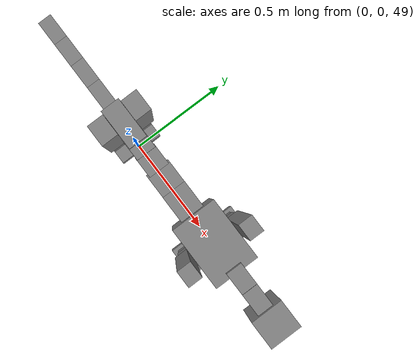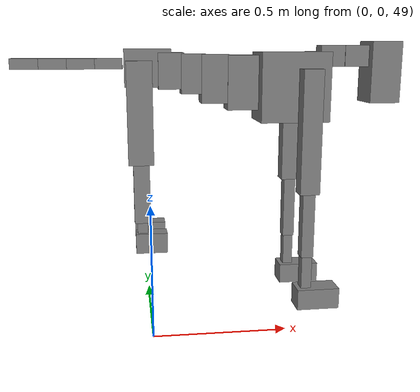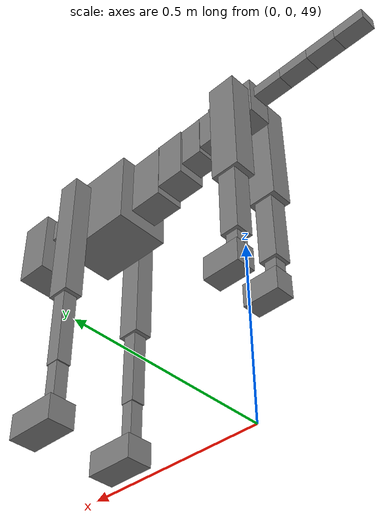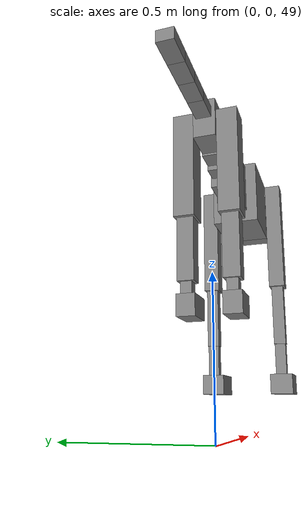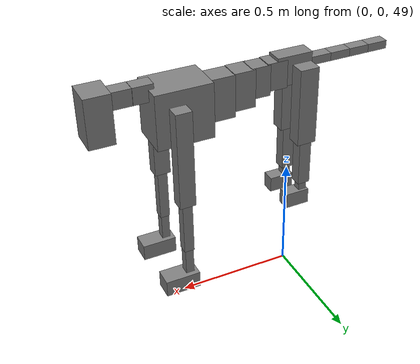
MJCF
<mujoco model="dog">

    <default>
        <joint armature="0.02" stiffness="1" damping="0.2" limited="true"/>
        <geom condim="3" friction="1 0.05 0.05" margin="0.01"/>
        <motor ctrllimited="true" ctrlrange="-1.0 1.0" forcelimited="true" gear="50"/>
    </default>

    <compiler inertiafromgeom="true" angle="radian"/>

    <option timestep="0.016" iterations="50" tolerance="1e-10" solver="Newton" jacobian="dense" cone="pyramidal"/>

    <size nconmax="20000" njmax="60000" nstack="5000000"/>
    <visual>
        <map force="0.1" zfar="30"/>
        <rgba haze="0.15 0.25 0.35 1"/>
        <quality shadowsize="2048"/>
        <global offwidth="800" offheight="800"/>
    </visual>

    <asset>
        <texture type="skybox" builtin="gradient" rgb1="0.3 0.5 0.7" rgb2="0 0 0" width="512" height="512"/>
        <texture name="texplane" type="2d" builtin="checker" rgb1=".2 .3 .4" rgb2=".1 0.15 0.2" width="512" height="512"
                 mark="cross" markrgb=".8 .8 .8"/>
        <texture name="texgeom" type="cube" builtin="flat" mark="cross" width="127" height="1278" rgb1="0.8 0.6 0.4"
                 rgb2="0.8 0.6 0.4" markrgb="1 1 1" random="0.01"/>

        <material name="matplane" reflectance="0.3" texture="texplane" texrepeat="1 1" texuniform="true"/>
        <material name="matgeom" texture="texgeom" texuniform="true" rgba="0.8 0.6 .4 1"/>
    </asset>

    <worldbody>
        <geom name="floor" pos="0 0 0" size="0 0 .25" type="plane" material="matplane" condim="3"/>

        <light directional="false" diffuse=".2 .2 .2" specular="0 0 0" pos="0 0 5" dir="0 0 -1" castshadow="false"/>
        <light mode="targetbodycom" target="torso" directional="false" diffuse=".8 .8 .8" specular="0.3 0.3 0.3"
               pos="0 0 4.0" dir="0 0 -1"/>

        <body name="root" pos="0 0 50">
            <freejoint name="root_1"/>
            <geom type="box" pos="0 0 -0.02" size="0.0774  0.0358  0.063" density="2030"/>

            <body name="spine1" pos="0.054 0 0">
                <joint name="spine1_y" axis="0 1 0" range="0 0.7" limited="true"/>
                <geom type="box" pos="0.02375 0 -0.03" size="0.04375  0.0375  0.05985" density="2030"/>

                <body name="spine2" pos="0.0612 0 0">
                    <joint name="spine2_y" axis="0 1 0" range="-0.15 0.15" limited="true"/>
                    <geom type="box" pos="0.03555  0  -0.04" size="0.04055  0.039  0.06615" density="2030"/>

                    <body name="spine3" pos="0.0730 0 0">
                        <joint name="spine3_y" axis="0 1 0" range="-0.15 0.15" limited="true"/>
                        <geom type="box" pos="0.03555  0  -0.057" size="0.04555  0.0445  0.081" density="2030"/>

                        <body name="spine4" pos="0.0780 0 0">
                            <joint name="spine4_y" axis="0 1 0" range="-0.15 0.15" limited="true"/>
                            <geom type="box" pos="0.05265  0  -0.07" size="0.05265  0.045  0.09135" density="2030"/>

                            <body name="torso" pos="0.1082 0 0">
                                <joint name="torso_y" axis="0 1 0" range="-0.15 0.15" limited="true"/>
                                <geom type="box" pos="0.11925  0  -0.085" size="0.11925  0.085  0.11745"
                                      density="2030"/>

                                <body name="neck1" pos="0.2160  0   0.0180">
                                    <joint name="neck1_y" axis="0 1 0" range="-1.2  -1" limited="true"/>
                                    <geom type="box" pos="0.0423  0  0" size="0.0423  0.03  0.036" density="2325"/>

                                    <body name="neck2" pos="0.0853  0  0">
                                        <joint name="neck2_y" axis="0 1 0" range="0.1  0" limited="true"/>
                                        <geom type="box" pos="0.0423  0  0" size="0.0423  0.03  0.036" density="2325"/>

                                        <body name="head" pos="0.0853  0  0">
                                            <joint name="head_y" axis="0 1 0" range="-0.3  -0.2" limited="true"/>
                                            <geom type="box" pos="0.0531  0  -0.055" size="0.0531  0.06  0.1044"
                                                  density="4030"/>

                                        </body>
                                    </body>
                                </body>

                                <body name="front_shoulder" pos="0.156  0   -0.0480">
                                    <joint name="front_shoulder_y" axis="0 1 0" range="-1 1.5" limited="true"/>
                                    <geom type="box" pos="0 0.13 -0.1819" size="0.0338  0.0289  0.2085" density="1158"/>
                                    <geom type="box" pos="0 -0.13 -0.1819" size="0.0338  0.0289  0.2085"
                                          density="1158"/>

                                    <body name="front_elbow" pos="0  0  -0.3637">
                                        <joint name="front_elbow_y" axis="0 1 0" range="-2 0" limited="true"/>
                                        <geom type="box" pos="0 0.13 -0.1250" size="0.0211  0.0216  0.1250"
                                              density="1081"/>
                                        <geom type="box" pos="0 -0.13 -0.1250" size="0.0211  0.0216  0.1250"
                                              density="1081"/>

                                        <body name="front_wrist" pos="0  0  -0.2500">
                                            <joint name="front_wrist_y" axis="0 1 0" range="-0.2 0" limited="true"/>
                                            <geom type="box" pos="0 0.13 -0.0641" size="0.0177  0.0197  0.0772"
                                                  density="1664"/>
                                            <geom type="box" pos="0 -0.13 -0.0641" size="0.0177  0.0197  0.0772"
                                                  density="1664"/>

                                            <body name="front_finger_end" pos="0  0  -0.1281">
                                                <joint name="front_finger_y" axis="0 1 0" range="-0.4 1"
                                                       limited="true"/>
                                                <geom type="box" pos="0.0404  0.13  -0.0212"
                                                      size="0.0741  0.0404  0.0362" density="1515"/>
                                                <geom type="box" pos="0.0404  -0.13  -0.0212"
                                                      size="0.0741  0.0404  0.0362" density="1515"/>

                                            </body>

                                        </body>
                                    </body>
                                </body>

                            </body>
                        </body>
                    </body>
                </body>
            </body>

            <body name="back_hip" pos="-0.03 0 -0.018">
                <joint name="back_hip_y" axis="0 1 0" range="-1.5 0.3" limited="true"/>
                <geom type="box" pos="0 0.07 -0.1466" size="0.0419  0.0328  0.1694" density="1154"/>
                <geom type="box" pos="0 -0.07 -0.1466" size="0.0419  0.0328  0.1694" density="1154"/>

                <body name="back_knee" pos="0  0  -0.2933">
                    <joint name="back_knee_y" axis="0 1 0" range="0 2.8" limited="true"/>
                    <geom type="box" pos="0 0.07 -0.1030" size="0.0268  0.0264  0.1186" density="1227"/>
                    <geom type="box" pos="0 -0.07 -0.1030" size="0.0268  0.0264  0.1186" density="1227"/>

                    <body name="back_ankle" pos="0  0  -0.2060">
                        <joint name="back_ankle_y" axis="0 1 0" range="-2.2 0" limited="true"/>
                        <geom type="box" pos="0 0.07 -0.0341" size="0.0177  0.0177  0.0454" density="1284"/>
                        <geom type="box" pos="0 -0.07 -0.0341" size="0.0177  0.0177  0.0454" density="1284"/>

                        <body name="back_toe_end" pos="0  0  -0.0682">
                            <joint name="back_toe_y" axis="0 1 0" range="-0.4 1" limited="true"/>
                            <geom type="box" pos="0.0290  0.07  -0.0192" size="0.0532  0.0290  0.0342" density="1515"/>
                            <geom type="box" pos="0.0290  -0.07  -0.0192" size="0.0532  0.0290  0.0342" density="1515"/>

                        </body>
                    </body>
                </body>
            </body>

            <body name="tail1" pos="-0.074 0 -0.006">
                <joint name="tail1_y" axis="0 1 0" range="-0.2 0.2" limited="true"/>
                <geom type="box" pos="-0.0536  0  0" size="0.045  0.025  0.0175" density="1587"/>

                <body name="tail2" pos="-0.09 0 0">
                    <joint name="tail2_y" axis="0 1 0" range="-0.2 0.2" limited="true"/>
                    <geom type="box" pos="-0.0536  0  0" size="0.045  0.025  0.0175" density="1587"/>

                    <body name="tail3" pos="-0.09 0 0">
                        <joint name="tail3_y" axis="0 1 0" range="-0.2 0.2" limited="true"/>
                        <geom type="box" pos="-0.0536  0  0" size="0.045  0.025  0.0175" density="1587"/>

                        <body name="tail4" pos="-0.09 0 0">
                            <joint name="tail4_y" axis="0 1 0" range="-0.2 0.2" limited="true"/>
                            <geom type="box" pos="-0.0536  0  0" size="0.045  0.025  0.0175" density="1587"/>

                        </body>
                    </body>
                </body>
            </body>
        </body>
    </worldbody>

    <actuator>
        <motor joint="spine1_y" forcerange="-150 150     "/>
        <motor joint="spine2_y" forcerange="-150 150     "/>
        <motor joint="spine3_y" forcerange="-150 150     "/>
        <motor joint="spine4_y" forcerange="-150 150     "/>
        <motor joint="torso_y" forcerange="-150 150     "/>
        <motor joint="neck1_y" forcerange="-100 100       "/>
        <motor joint="neck2_y" forcerange="-100 100       "/>
        <motor joint="head_y" forcerange="-150 150       "/>
        <motor joint="front_shoulder_y" forcerange="-159.21 133.59"/>
        <motor joint="front_elbow_y" forcerange="-153.07 103.83"/>
        <motor joint="front_wrist_y" forcerange="-53.70 103.94"/>
        <motor joint="front_finger_y" forcerange="-77.33 98.11"/>
        <motor joint="back_hip_y" forcerange="-388.62 249.25"/>
        <motor joint="back_knee_y" forcerange="-334.99 249.63"/>
        <motor joint="back_angle_y" forcerange="-97.89 85.54"/>
        <motor joint="back_toe_y" forcerange="-90.08 62.23"/>
        <motor joint="tail1_y" forcerange="-50 50     "/>
        <motor joint="tail2_y" forcerange="-50 50     "/>
        <motor joint="tail3_y" forcerange="-50 50     "/>
        <motor joint="tail4_y" forcerange="-50 50     "/>
    </actuator>
</mujoco>
